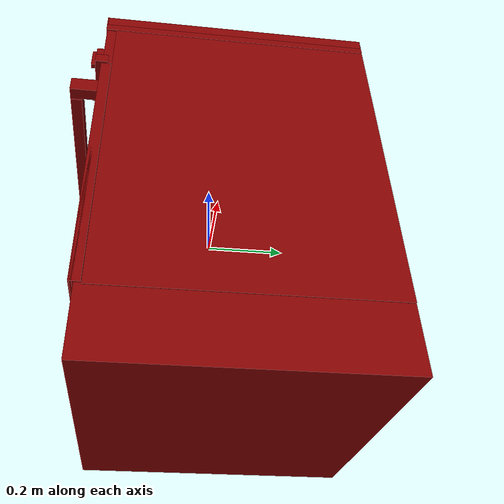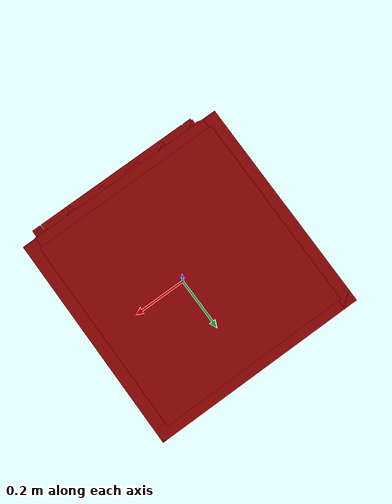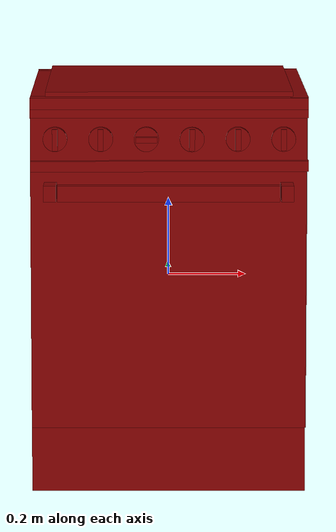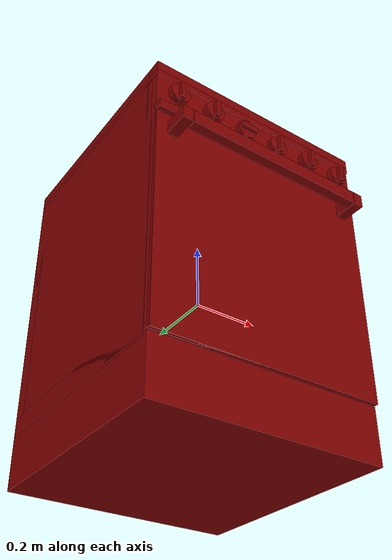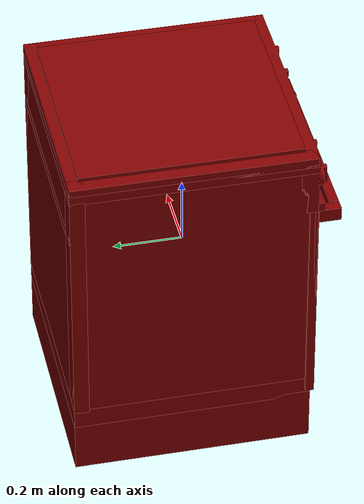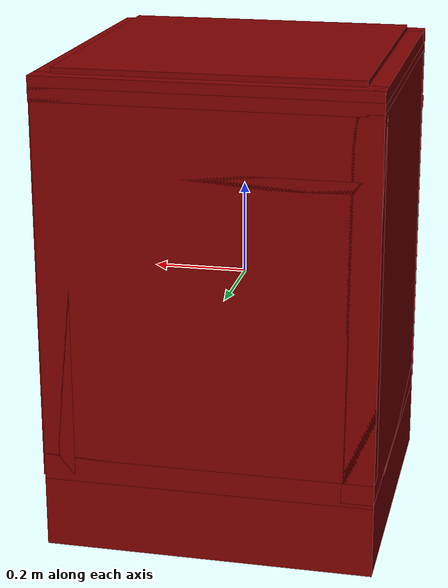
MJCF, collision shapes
<?xml version='1.0' encoding='UTF-8'?>
<mujoco model="model">
  <option timestep="0.002" gravity="0.0 0.0 -9.81"/>
  <compiler angle="radian"/>
  <asset>
    <mesh file="visuals/door.obj" name="door_vis"/>
    <mesh file="visuals/door_Clear.obj" name="door_Clear_vis"/>
    <mesh file="visuals/knob_front_left.obj" name="knob_front_left_vis"/>
    <mesh file="visuals/knob_front_right.obj" name="knob_front_right_vis"/>
    <mesh file="visuals/knob_rear_left.obj" name="knob_rear_left_vis"/>
    <mesh file="visuals/knob_rear_right.obj" name="knob_rear_right_vis"/>
    <mesh file="visuals/knob_temp.obj" name="knob_temp_vis"/>
    <mesh file="visuals/knob_time.obj" name="knob_time_vis"/>
    <mesh file="visuals/rack0.obj" name="rack0_vis"/>
    <mesh file="visuals/Body001.obj" name="Body001_vis"/>
    <texture file="visuals/T_BC001.png" name="Body001_material" type="2d"/>
    <material name="Body001_material" rgba="1 1 1 1.0" texture="Body001_material" shininess="1" specular="1"/>
    <texture file="visuals/T_BC001.png" name="door_material" type="2d"/>
    <material name="door_material" rgba="1 1 1 1.0" texture="door_material" shininess="1" specular="1"/>
    <texture file="visuals/T_BC001.png" name="door_Clear_material" type="2d"/>
    <material name="door_Clear_material" rgba="1 1 1 0.5" texture="door_Clear_material" shininess="0.5" specular="0.3103448502657381"/>
    <texture file="visuals/T_BC001.png" name="knob_front_left_material" type="2d"/>
    <material name="knob_front_left_material" rgba="1 1 1 1.0" texture="knob_front_left_material" shininess="0.5" specular="1"/>
    <texture file="visuals/T_BC001.png" name="knob_front_right_material" type="2d"/>
    <material name="knob_front_right_material" rgba="1 1 1 1.0" texture="knob_front_right_material" shininess="0.5" specular="1"/>
    <texture file="visuals/T_BC001.png" name="knob_rear_left_material" type="2d"/>
    <material name="knob_rear_left_material" rgba="1 1 1 1.0" texture="knob_rear_left_material" shininess="0.5" specular="1"/>
    <texture file="visuals/T_BC001.png" name="knob_rear_right_material" type="2d"/>
    <material name="knob_rear_right_material" rgba="1 1 1 1.0" texture="knob_rear_right_material" shininess="0.5" specular="1"/>
    <texture file="visuals/T_BC001.png" name="knob_temp_material" type="2d"/>
    <material name="knob_temp_material" rgba="1 1 1 1.0" texture="knob_temp_material" shininess="0.5" specular="1"/>
    <texture file="visuals/T_BC001.png" name="knob_time_material" type="2d"/>
    <material name="knob_time_material" rgba="1 1 1 1.0" texture="knob_time_material" shininess="0.5" specular="1"/>
    <texture file="visuals/T_BC001.png" name="rack0_material" type="2d"/>
    <material name="rack0_material" rgba="1 1 1 1.0" texture="rack0_material" shininess="3" specular="3"/>
  </asset>
  <default>
    <default class="visual">
      <geom conaffinity="0" contype="0" group="1" type="mesh"/>
    </default>
    <default class="collision">
      <geom group="0" rgba="0.5 0 0 0.5"/>
    </default>
    <default class="spawn">
      <geom group="0" rgba="1 1 1 0.5" contype="0" conaffinity="0"/>
      <site group="0" rgba="1 1 1 0.5"/>
    </default>
    <default class="region">
      <geom group="1" conaffinity="0" contype="0" rgba="0 1 0 0"/>
    </default>
  </default>
  <worldbody>
    <body>
      <body name="object">
        <geom mesh="Body001_vis" type="mesh" solimp="0.998 0.998 0.001" solref="0.001 1" friction="0.95 0.3 0.1" class="visual" material="Body001_material"/>
        <geom class="collision" type="box" pos="-0.0017923666164278984 0.042464543133974075 -0.42698708176612854" size="0.34616029262542725 0.3445521593093872 0.0821145698428154" quat="1.0 0.0 0.0 0.0"/>
        <geom class="collision" type="box" pos="-0.31439366936683655 0.05019332841038704 0.05156845599412918" size="0.03355904296040535 0.3368234634399414 0.40023073554039" quat="1.0 0.0 0.0 0.0"/>
        <geom class="collision" type="box" pos="0.31278398633003235 0.050193291157484055 0.0515684150159359" size="0.03401174023747444 0.33682340383529663 0.40023073554039" quat="1.0 0.0 0.0 0.0"/>
        <geom class="collision" type="box" pos="-0.001792405964806676 0.05015267804265022 -0.32598957419395447" size="0.34616029262542725 0.3368641138076782 0.030844757333397865" quat="1.0 0.0 0.0 0.0"/>
        <geom class="collision" type="box" pos="-0.0017924255225807428 0.3649962842464447 0.07309375703334808" size="0.34616032242774963 0.02202046662569046 0.37870535254478455" quat="1.0 0.0 0.0 0.0"/>
        <geom class="collision" type="box" pos="-0.2846463620662689 0.05137132853269577 -0.02617666684091091" size="0.01465137954801321 0.2769029140472412 0.008648411370813847" quat="1.0 0.0 0.0 0.0"/>
        <geom class="collision" type="box" pos="0.2828846573829651 0.05137132853269577 -0.02617666684091091" size="0.01465137954801321 0.2769029140472412 0.008648411370813847" quat="1.0 0.0 0.0 0.0"/>
        <geom class="collision" type="box" pos="-0.001792405964806676 -0.28670698404312134 0.3827654719352722" size="0.34616029262542725 0.024249166250228882 0.06903368979692459" quat="1.0 0.0 0.0 0.0"/>
        <geom class="collision" type="box" pos="3.4924596548080444e-09 -0.3135274648666382 0.326966792345047" size="0.347952663898468 0.016227228567004204 0.013264309614896774" quat="1.0 0.0 0.0 0.0"/>
        <geom class="collision" type="box" pos="-1.5774276107549667e-08 0.037032272666692734 0.46076732873916626" size="0.347952663898468 0.3499845266342163 0.014134816825389862" quat="1.0 0.0 0.0 0.0"/>
        <geom class="collision" type="box" pos="-9.514042176306248e-08 -0.29191362857818604 0.48243027925491333" size="0.3479527533054352 0.021040046587586403 0.014771871268749237" quat="1.0 0.0 0.0 0.0"/>
        <geom class="collision" type="box" pos="1.0328949429094791e-07 0.36585530638694763 0.48243027925491333" size="0.3479527533054352 0.02116142399609089 0.014771874062716961" quat="1.0 0.0 0.0 0.0"/>
        <geom class="collision" type="box" pos="-0.326181560754776 0.03813131898641586 0.48243027925491333" size="0.02177128568291664 0.348294734954834 0.014771876856684685" quat="1.0 0.0 0.0 0.0"/>
        <geom class="collision" type="box" pos="0.32568034529685974 0.03813131898641586 0.48243027925491333" size="0.022272568196058273 0.34829482436180115 0.01477186381816864" quat="1.0 0.0 0.0 0.0"/>
        <geom class="collision" type="box" pos="-0.0003375118540134281 0.03819166123867035 0.5015140175819397" size="0.31023916602134705 0.31763914227485657 0.00739360461011529" quat="1.0 0.0 0.0 0.0"/>
        <geom class="collision" type="cylinder" pos="-0.15450254082679749 -0.09712012112140656 0.4763477146625519" size="0.08044295012950897 0.011309492401778698" quat="1.0 0.0 0.0 0.0"/>
        <geom class="collision" type="cylinder" pos="-0.15450254082679749 0.17260466516017914 0.4763477146625519" size="0.08044295012950897 0.011309492401778698" quat="1.0 0.0 0.0 0.0"/>
        <geom class="collision" type="cylinder" pos="-0.15450254082679749 -0.09712012112140656 0.49431928992271423" size="0.05308040603995323 0.007462585810571909" quat="1.0 0.0 0.0 0.0"/>
        <geom class="collision" type="cylinder" pos="-0.15341143310070038 0.17184089124202728 0.49431928992271423" size="0.05308040603995323 0.007462585810571909" quat="1.0 0.0 0.0 0.0"/>
        <geom class="collision" type="cylinder" pos="0.1554141789674759 0.17260466516017914 0.4797573387622833" size="0.05751175805926323 0.008085590787231922" quat="1.0 0.0 0.0 0.0"/>
        <geom class="collision" type="cylinder" pos="0.1554141789674759 -0.09608358144760132 0.47660186886787415" size="0.07045555114746094 0.009905361570417881" quat="1.0 0.0 0.0 0.0"/>
        <geom class="collision" type="cylinder" pos="0.1554141789674759 0.17124076187610626 0.4932335913181305" size="0.03428720310330391 0.007443667855113745" quat="1.0 0.0 0.0 0.0"/>
        <geom class="collision" type="cylinder" pos="0.1554141789674759 -0.09776119887828827 0.4932335913181305" size="0.04124581813812256 0.008954365737736225" quat="1.0 0.0 0.0 0.0"/>
        <geom class="collision" type="box" pos="-0.0003473036631476134 0.05096094310283661 0.3080774247646332" size="0.3450537323951721 0.33605578541755676 0.013167539611458778" quat="1.0 0.0 0.0 0.0"/>
        <body name="door">
          <joint axis="1.0 0.0 0.0" pos="-0.0011480797547847033 -0.31221669912338257 -0.3395808935165405" limited="true" name="door_joint" range="0.0 1.5707963267948966" type="hinge" damping="1" frictionloss="1" armature=".01" stiffness="0.05"/>
          <geom mesh="door_vis" type="mesh" solimp="0.998 0.998 0.001" solref="0.001 1" friction="0.95 0.3 0.1" class="visual" material="door_material"/>
          <geom class="collision" type="box" pos="-0.0007062967633828521 -0.29978299140930176 -0.013628222048282623" size="0.2522139549255371 0.011011546477675438 0.23612838983535767" quat="1.0 0.0 0.0 0.0"/>
          <geom class="collision" type="box" pos="-0.0019542097579687834 -0.3011796772480011 -0.015073235146701336" size="0.34599849581718445 0.01282773818820715 0.3273508548736572" quat="1.0 0.0 0.0 0.0"/>
          <geom class="collision" type="box" pos="-0.29780131578445435 -0.3501988649368286 0.26562783122062683" size="0.015539824031293392 0.03701944649219513 0.020211882889270782" quat="1.0 0.0 0.0 0.0"/>
          <geom class="collision" type="box" pos="0.2937222123146057 -0.3501988649368286 0.26562783122062683" size="0.015539824031293392 0.03701944649219513 0.020211882889270782" quat="1.0 0.0 0.0 0.0"/>
          <geom class="collision" type="box" pos="-0.0019276040839031339 -0.3729130029678345 0.26562783122062683" size="0.27713650465011597 0.01430530659854412 0.020211882889270782" quat="1.0 0.0 0.0 0.0" name="door_handle_main"/>
          <geom class="collision" type="box" pos="-0.0019542097579687834 -0.3075507581233978 -0.015073235146701336" size="0.34599849581718445 0.0041842651553452015 0.3273508548736572" quat="1.0 0.0 0.0 0.0" name="door_main"/>
          <body name="door_Clear">
            <geom mesh="door_Clear_vis" type="mesh" solimp="0.998 0.998 0.001" solref="0.001 1" friction="0.95 0.3 0.1" class="visual" material="door_Clear_material"/>
            <geom class="collision" type="box" pos="-0.0007062967633828521 -0.29978299140930176 -0.013628222048282623" size="0.2522139549255371 0.011011546477675438 0.23612838983535767" quat="1.0 0.0 0.0 0.0"/>
          </body>
        </body>
        <body name="knob_front_left">
          <joint axis="0.0 -1.0 0.0" pos="-0.28569862246513367 -0.33146214485168457 0.39514991641044617" limited="true" name="knob_front_left_joint" range="0.0 3.141592653589793" type="hinge" damping="0.05" armature="1" frictionloss="0.75"/>
          <geom mesh="knob_front_left_vis" type="mesh" solimp="0.998 0.998 0.001" solref="0.001 1" friction="0.95 0.3 0.1" class="visual" material="knob_front_left_material"/>
          <geom class="collision" type="cylinder" pos="-0.2854290306568146 -0.32465749979019165 0.3954122066497803" size="0.030379097908735275 0.009068920277059078" quat="0.7071068286895752 0.7071067690849304 0.0 0.0" friction="100 0.5 0.01"/>
          <geom class="collision" type="box" pos="-0.2854290306568146 -0.34061720967292786 0.39524558186531067" size="0.006752192508429289 0.007036407478153706 0.026408346369862556" quat="1.0 0.0 0.0 0.0" name="knob_front_left_main" friction="100 0.5 0.01"/>
        </body>
        <body name="knob_front_right">
          <joint axis="0.0 -1.0 0.0" pos="0.28548693656921387 -0.33146214485168457 0.39514991641044617" limited="true" name="knob_front_right_joint" range="0.0 3.141592653589793" type="hinge" damping="0.05" armature="1" frictionloss="0.75"/>
          <geom mesh="knob_front_right_vis" type="mesh" solimp="0.998 0.998 0.001" solref="0.001 1" friction="0.95 0.3 0.1" class="visual" material="knob_front_right_material"/>
          <geom class="collision" type="cylinder" pos="0.28517773747444153 -0.32465749979019165 0.3954122066497803" size="0.030379097908735275 0.009068920277059078" quat="0.7071068286895752 0.7071067690849304 0.0 0.0" friction="100 0.5 0.01"/>
          <geom class="collision" type="box" pos="0.28517773747444153 -0.34061720967292786 0.39524558186531067" size="0.0067521920427680016 0.007036406081169844 0.026408344507217407" quat="1.0 0.0 0.0 0.0" name="knob_front_right_main" friction="100 0.5 0.01"/>
        </body>
        <body name="knob_rear_left">
          <joint axis="0.0 -1.0 0.0" pos="-0.1711650937795639 -0.33146214485168457 0.39514991641044617" limited="true" name="knob_rear_left_joint" range="0.0 3.141592653589793" type="hinge" damping="0.05" armature="1" frictionloss="0.75"/>
          <geom mesh="knob_rear_left_vis" type="mesh" solimp="0.998 0.998 0.001" solref="0.001 1" friction="0.95 0.3 0.1" class="visual" material="knob_rear_left_material"/>
          <geom class="collision" type="cylinder" pos="-0.1712786853313446 -0.32465749979019165 0.3954122066497803" size="0.030379097908735275 0.009068920277059078" quat="0.7071068286895752 0.7071067690849304 0.0 0.0" friction="100 0.5 0.01"/>
          <geom class="collision" type="box" pos="-0.1712786853313446 -0.34061720967292786 0.39524558186531067" size="0.006752191111445427 0.0070364042185246944 0.02640834078192711" quat="1.0 0.0 0.0 0.0" name="knob_rear_left_main" friction="100 0.5 0.01"/>
        </body>
        <body name="knob_rear_right">
          <joint axis="0.0 -1.0 0.0" pos="0.17117184400558472 -0.33146214485168457 0.39514991641044617" limited="true" name="knob_rear_right_joint" range="0.0 3.141592653589793" type="hinge" damping="0.05" armature="1" frictionloss="0.75"/>
          <geom mesh="knob_rear_right_vis" type="mesh" solimp="0.998 0.998 0.001" solref="0.001 1" friction="0.95 0.3 0.1" class="visual" material="knob_rear_right_material"/>
          <geom class="collision" type="cylinder" pos="0.17126679420471191 -0.32465749979019165 0.3954122066497803" size="0.030379097908735275 0.009068920277059078" quat="0.7071068286895752 0.7071067690849304 0.0 0.0" friction="100 0.5 0.01"/>
          <geom class="collision" type="box" pos="0.17126679420471191 -0.34061720967292786 0.39524558186531067" size="0.006752190180122852 0.0070364028215408325 0.02640833705663681" quat="1.0 0.0 0.0 0.0" name="knob_rear_right_main" friction="100 0.5 0.01"/>
        </body>
        <body name="knob_temp">
          <joint axis="0.0 1.0 0.0" pos="0.056451503187417984 -0.33146214485168457 0.3945634961128235" limited="true" name="knob_temp_joint" range="0.0 5.585053606381854" type="hinge" damping="0.05" armature="1" frictionloss="0.75"/>
          <geom mesh="knob_temp_vis" type="mesh" solimp="0.998 0.998 0.001" solref="0.001 1" friction="0.95 0.3 0.1" class="visual" material="knob_temp_material"/>
          <geom class="collision" type="cylinder" pos="0.056680720299482346 -0.3220304548740387 0.3943028151988983" size="0.030754350125789642 0.00709338067099452" quat="0.7071068286895752 0.7071067690849304 0.0 0.0" friction="100 0.5 0.01"/>
          <geom class="collision" type="box" pos="0.056680720299482346 -0.33609965443611145 0.3941341042518616" size="0.006835602223873138 0.007123332004994154 0.026734568178653717" quat="1.0 0.0 0.0 0.0" name="knob_temp_main" friction="100 0.5 0.01"/>
        </body>
        <body name="knob_time">
          <joint axis="0.0 1.0 0.0" pos="-0.056845419108867645 -0.33146214485168457 0.39511838555336" limited="true" name="knob_time_joint" range="0.0 5.288347633542818" type="hinge" damping="0.05" armature="1" frictionloss="0.75"/>
          <geom mesh="knob_time_vis" type="mesh" solimp="0.998 0.998 0.001" solref="0.001 1" friction="0.95 0.3 0.1" class="visual" material="knob_time_material"/>
          <geom class="collision" type="cylinder" pos="-0.05742628499865532 -0.32165399193763733 0.39488252997398376" size="0.030754350125789642 0.007469835691154003" quat="0.7071068286895752 0.7071067690849304 0.0 0.0" friction="100 0.5 0.01"/>
          <geom class="collision" type="box" pos="-0.057257600128650665 -0.33609965443611145 0.39488252997398376" size="0.026734568178653717 0.007123332004994154 0.006835603620857" quat="1.0 0.0 0.0 0.0" name="knob_time_main" friction="100 0.5 0.01"/>
        </body>
        <body name="rack0">
          <geom class="region" name="reg_rack0" type="box" pos="0.0004728734493255615 0.04934030771255493 0.1396579947322607" size="0.2517537603378296 0.2668352553844452 0.15015321208536625"/>
          <joint axis="0.0 -1.0 0.0" pos="-0.000848837080411613 0.049323372542858124 -0.013735120184719563" limited="true" name="rack0_joint" range="0.0 0.45" type="slide" damping="1" frictionloss="1" armature=".01" stiffness="0.05"/>
          <geom mesh="rack0_vis" type="mesh" solimp="0.998 0.998 0.001" solref="0.001 1" friction="0.95 0.3 0.1" class="visual" material="rack0_material"/>
          <geom class="collision" type="box" pos="-0.0006172017892822623 0.049187831580638885 -0.013703279197216034" size="0.27567464113235474 0.26948490738868713 0.002425199607387185" quat="1.0 0.0 0.0 0.0"/>
        </body>
        <geom class="region" name="reg_int" type="box" pos="-0.0011971890926361084 0.027929216623306274 -0.00016130506992340088" size="0.2646118531227112 0.30744524097442627 0.28801387345790863"/>
        <site type="cylinder" rgba="0.3 0.4 1 0.5" size="0.05223957449197769 0.006850000005215406" pos="-0.15335935354232788 0.1720966100692749 0.49300000071525574" name="burner_on_rear_left"/>
        <site type="cylinder" rgba="0.3 0.4 1 0.5" size="0.04905404895544052 0.006850000005215406" pos="-0.15286433696746826 -0.09645688533782959 0.49300000071525574" name="burner_on_front_left"/>
        <site type="cylinder" rgba="0.3 0.4 1 0.5" size="0.040797363966703415 0.006850000005215406" pos="0.15586179494857788 -0.09645688533782959 0.49300000071525574" name="burner_on_front_right"/>
        <site type="cylinder" rgba="0.3 0.4 1 0.5" size="0.030506880953907967 0.006850000005215406" pos="0.15586179494857788 0.1720966100692749 0.49300000071525574" name="burner_on_rear_right"/>
        <site type="cylinder" rgba="0.5 0 0 0" size="0.04905404895544052 4.999999873689376e-05" pos="-0.15286433696746826 -0.09645688533782959 0.5090388655662537" name="burner_front_left_place_site"/>
        <site type="cylinder" rgba="0.5 0 0 0" size="0.040797363966703415 4.999999873689376e-05" pos="0.15586179494857788 -0.09645688533782959 0.5090388655662537" name="burner_front_right_place_site"/>
        <site type="cylinder" rgba="0.5 0 0 0" size="0.05223957449197769 4.999999873689376e-05" pos="-0.15335935354232788 0.1720966100692749 0.5090388655662537" name="burner_rear_left_place_site"/>
        <site type="cylinder" rgba="0.5 0 0 0" size="0.030506880953907967 4.999999873689376e-05" pos="0.15586179494857788 0.1720966100692749 0.5090388655662537" name="burner_rear_right_place_site"/>
        <geom class="region" name="reg_main" type="box" pos="-7.450580596923828e-09 0.036504700779914856 -0.005949720740318298" size="0.348952663898468 0.3515120277404785 0.5041518936157227"/>
      </body>
    </body>
  </worldbody>
  <actuator>
    <motor name="door_joint_actuator" joint="door_joint" gear="50"/>
    <motor name="knob_front_left_joint_actuator" joint="knob_front_left_joint" gear="50"/>
    <motor name="knob_front_right_joint_actuator" joint="knob_front_right_joint" gear="50"/>
    <motor name="knob_rear_left_joint_actuator" joint="knob_rear_left_joint" gear="50"/>
    <motor name="knob_rear_right_joint_actuator" joint="knob_rear_right_joint" gear="50"/>
    <motor name="knob_temp_joint_actuator" joint="knob_temp_joint" gear="50"/>
    <motor name="knob_time_joint_actuator" joint="knob_time_joint" gear="50"/>
    <motor name="rack0_joint_actuator" joint="rack0_joint" gear="50"/>
  </actuator>
</mujoco>
